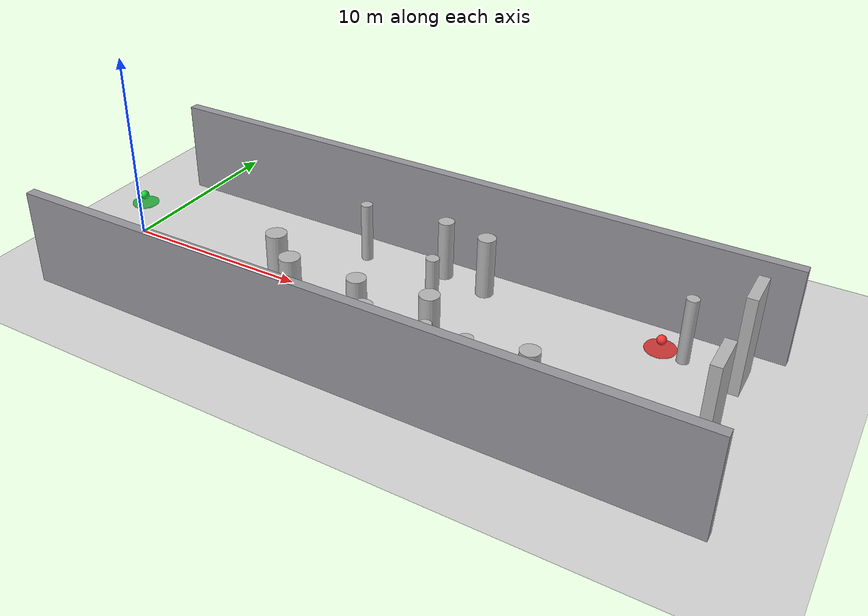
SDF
<sdf version="1.10">
 <world name="obstacle_avoidance">
  <physics type="ode">
   <max_step_size>0.0040000000000000001</max_step_size>
   <real_time_factor>1</real_time_factor>
   <real_time_update_rate>250</real_time_update_rate>
  </physics>
  <plugin name="gz::sim::systems::Physics" filename="gz-sim-physics-system"/>
  <plugin name="gz::sim::systems::UserCommands" filename="gz-sim-user-commands-system"/>
  <plugin name="gz::sim::systems::SceneBroadcaster" filename="gz-sim-scene-broadcaster-system"/>
  <plugin name="gz::sim::systems::Contact" filename="gz-sim-contact-system"/>
  <plugin name="gz::sim::systems::Imu" filename="gz-sim-imu-system"/>
  <plugin name="gz::sim::systems::AirPressure" filename="gz-sim-air-pressure-system"/>
  <plugin name="gz::sim::systems::AirSpeed" filename="gz-sim-air-speed-system"/>
  <plugin name="gz::sim::systems::ApplyLinkWrench" filename="gz-sim-apply-link-wrench-system"/>
  <plugin name="gz::sim::systems::NavSat" filename="gz-sim-navsat-system"/>
  <plugin name="gz::sim::systems::Magnetometer" filename="gz-sim-magnetometer-system"/>
  <plugin name="gz::sim::systems::Sensors" filename="gz-sim-sensors-system">
   <render_engine>ogre2</render_engine>
  </plugin>
  <plugin name="custom::OpticalFlowSystem" filename="libOpticalFlowSystem.so"/>
  <plugin name="custom::GstCameraSystem" filename="libGstCameraSystem.so"/>
  <gravity>0 0 -9.8000000000000007</gravity>
  <magnetic_field>6.0000000000000002e-06 2.3e-05 -4.1999999999999998e-05</magnetic_field>
  <atmosphere type="adiabatic"/>
  <scene>
   <grid>true</grid>
   <ambient>0.449999988 0.449999988 0.449999988 1</ambient>
   <background>0.74000001 0.769999981 0.819999993 1</background>
   <shadows>true</shadows>
  </scene>
  <spherical_coordinates>
   <surface_model>EARTH_WGS84</surface_model>
   <world_frame_orientation>ENU</world_frame_orientation>
   <latitude_deg>47.397971057728974</latitude_deg>
   <longitude_deg>8.5461637398001464</longitude_deg>
   <elevation>0</elevation>
   <heading_deg>0</heading_deg>
  </spherical_coordinates>
  <model name="ground_plane">
   <static>true</static>
   <link name="link">
    <collision name="collision">
     <geometry><plane><normal>0 0 1</normal><size>1 1</size></plane></geometry>
    </collision>
    <visual name="visual">
     <geometry><plane><normal>0 0 1</normal><size>120 120</size></plane></geometry>
     <material>
      <ambient>0.850000024 0.850000024 0.850000024 1</ambient>
      <diffuse>0.850000024 0.850000024 0.850000024 1</diffuse>
      <specular>0.400000006 0.400000006 0.400000006 1</specular>
     </material>
    </visual>
    <inertial>
     <mass>1</mass>
     <inertia><ixx>1</ixx><ixy>0</ixy><ixz>0</ixz><iyy>1</iyy><iyz>0</iyz><izz>1</izz></inertia>
    </inertial>
   </link>
  </model>
  <model name="lane_left_wall">
   <static>false</static>
   <pose>16.057222 6.058223 2.500000 0 0 0.000000</pose>
   <link name="link">
    <collision name="collision">
     <geometry><box><size>34.093088 0.500000 5.000000</size></box></geometry>
    </collision>
    <visual name="visual">
     <geometry><box><size>34.093088 0.500000 5.000000</size></box></geometry>
     <material>
      <ambient>0.5 0.5 0.519999981 1</ambient>
      <diffuse>0.600000024 0.600000024 0.620000005 1</diffuse>
     </material>
    </visual>
    <inertial>
     <mass>1</mass>
     <inertia><ixx>1</ixx><ixy>0</ixy><ixz>0</ixz><iyy>1</iyy><iyz>0</iyz><izz>1</izz></inertia>
    </inertial>
   </link>
  </model>
  <model name="lane_right_wall">
   <static>false</static>
   <pose>16.057222 -6.058223 2.500000 0 0 0.000000</pose>
   <link name="link">
    <collision name="collision">
     <geometry><box><size>34.093088 0.500000 5.000000</size></box></geometry>
    </collision>
    <visual name="visual">
     <geometry><box><size>34.093088 0.500000 5.000000</size></box></geometry>
     <material>
      <ambient>0.5 0.5 0.519999981 1</ambient>
      <diffuse>0.600000024 0.600000024 0.620000005 1</diffuse>
     </material>
    </visual>
    <inertial>
     <mass>1</mass>
     <inertia><ixx>1</ixx><ixy>0</ixy><ixz>0</ixz><iyy>1</iyy><iyz>0</iyz><izz>1</izz></inertia>
    </inertial>
   </link>
  </model>
  <model name="cyl_01">
   <static>false</static>
   <pose>12 4 1.5999992086633334 2.2687360345456637e-18 4.5657228771581074e-18 -1.896154608907737e-19</pose>
   <link name="link">
    <collision name="collision">
     <geometry>
      <cylinder><radius>0.29999999999999999</radius><length>3.2000000000000002</length></cylinder>
     </geometry>
    </collision>
    <visual name="visual">
     <geometry>
      <cylinder><radius>0.29999999999999999</radius><length>3.2000000000000002</length></cylinder>
     </geometry>
    </visual>
    <inertial>
     <mass>1</mass>
     <inertia><ixx>1</ixx><ixy>0</ixy><ixz>0</ixz><iyy>1</iyy><iyz>0</iyz><izz>1</izz></inertia>
    </inertial>
   </link>
  </model>
  <model name="cyl_02">
   <static>false</static>
   <pose>20 -4.0999999999999996 1.7999992086633334 -5.95015447457351e-18 -7.1830272029298781e-18 8.102279845254366e-20</pose>
   <link name="link">
    <collision name="collision">
     <geometry>
      <cylinder><radius>0.29999999999999999</radius><length>3.6000000000000001</length></cylinder>
     </geometry>
    </collision>
    <visual name="visual">
     <geometry>
      <cylinder><radius>0.29999999999999999</radius><length>3.6000000000000001</length></cylinder>
     </geometry>
    </visual>
    <inertial>
     <mass>1</mass>
     <inertia><ixx>1</ixx><ixy>0</ixy><ixz>0</ixz><iyy>1</iyy><iyz>0</iyz><izz>1</izz></inertia>
    </inertial>
   </link>
  </model>
  <model name="cyl_03">
   <static>false</static>
   <pose>29 3.7999999999999998 1.6999992086633333 2.9183300555717811e-18 3.6794603956307752e-18 6.9962869253696579e-20</pose>
   <link name="link">
    <collision name="collision">
     <geometry>
      <cylinder><radius>0.29999999999999999</radius><length>3.3999999999999999</length></cylinder>
     </geometry>
    </collision>
    <visual name="visual">
     <geometry>
      <cylinder><radius>0.29999999999999999</radius><length>3.3999999999999999</length></cylinder>
     </geometry>
    </visual>
    <inertial>
     <mass>1</mass>
     <inertia><ixx>1</ixx><ixy>0</ixy><ixz>0</ixz><iyy>1</iyy><iyz>0</iyz><izz>1</izz></inertia>
    </inertial>
   </link>
  </model>
  <model name="block_01">
   <static>false</static>
   <pose>9.754724 -0.718801 1.600000 0 0 0.000000</pose>
   <link name="link">
    <collision name="collision">
     <geometry><cylinder><radius>0.536429</radius><length>3.200000</length></cylinder></geometry>
    </collision>
    <visual name="visual">
     <geometry><cylinder><radius>0.536429</radius><length>3.200000</length></cylinder></geometry>
    </visual>
    <inertial>
     <mass>1</mass>
     <inertia><ixx>1</ixx><ixy>0</ixy><ixz>0</ixz><iyy>1</iyy><iyz>0</iyz><izz>1</izz></inertia>
    </inertial>
   </link>
  </model>
  <model name="block_02">
   <static>false</static>
   <pose>18.818896 -1.589290 1.600000 0 0 0.000000</pose>
   <link name="link">
    <collision name="collision">
     <geometry><cylinder><radius>0.489630</radius><length>3.200000</length></cylinder></geometry>
    </collision>
    <visual name="visual">
     <geometry><cylinder><radius>0.489630</radius><length>3.200000</length></cylinder></geometry>
    </visual>
    <inertial>
     <mass>1</mass>
     <inertia><ixx>1</ixx><ixy>0</ixy><ixz>0</ixz><iyy>1</iyy><iyz>0</iyz><izz>1</izz></inertia>
    </inertial>
   </link>
  </model>
  <model name="block_03">
   <static>false</static>
   <pose>11.608750 -2.189982 1.600000 0 0 0.000000</pose>
   <link name="link">
    <collision name="collision">
     <geometry><cylinder><radius>0.528484</radius><length>3.200000</length></cylinder></geometry>
    </collision>
    <visual name="visual">
     <geometry><cylinder><radius>0.528484</radius><length>3.200000</length></cylinder></geometry>
    </visual>
    <inertial>
     <mass>1</mass>
     <inertia><ixx>1</ixx><ixy>0</ixy><ixz>0</ixz><iyy>1</iyy><iyz>0</iyz><izz>1</izz></inertia>
    </inertial>
   </link>
  </model>
  <model name="block_04">
   <static>false</static>
   <pose>18.794506 4.135269 1.600000 0 0 0.000000</pose>
   <link name="link">
    <collision name="collision">
     <geometry><cylinder><radius>0.454639</radius><length>3.200000</length></cylinder></geometry>
    </collision>
    <visual name="visual">
     <geometry><cylinder><radius>0.454639</radius><length>3.200000</length></cylinder></geometry>
    </visual>
    <inertial>
     <mass>1</mass>
     <inertia><ixx>1</ixx><ixy>0</ixy><ixz>0</ixz><iyy>1</iyy><iyz>0</iyz><izz>1</izz></inertia>
    </inertial>
   </link>
  </model>
  <model name="block_05">
   <static>false</static>
   <pose>15.289310 -2.109607 1.600000 0 0 0.000000</pose>
   <link name="link">
    <collision name="collision">
     <geometry><cylinder><radius>0.476729</radius><length>3.200000</length></cylinder></geometry>
    </collision>
    <visual name="visual">
     <geometry><cylinder><radius>0.476729</radius><length>3.200000</length></cylinder></geometry>
    </visual>
    <inertial>
     <mass>1</mass>
     <inertia><ixx>1</ixx><ixy>0</ixy><ixz>0</ixz><iyy>1</iyy><iyz>0</iyz><izz>1</izz></inertia>
    </inertial>
   </link>
  </model>
  <model name="block_06">
   <static>false</static>
   <pose>16.688040 -3.830106 1.600000 0 0 0.000000</pose>
   <link name="link">
    <collision name="collision">
     <geometry><cylinder><radius>0.518591</radius><length>3.200000</length></cylinder></geometry>
    </collision>
    <visual name="visual">
     <geometry><cylinder><radius>0.518591</radius><length>3.200000</length></cylinder></geometry>
    </visual>
    <inertial>
     <mass>1</mass>
     <inertia><ixx>1</ixx><ixy>0</ixy><ixz>0</ixz><iyy>1</iyy><iyz>0</iyz><izz>1</izz></inertia>
    </inertial>
   </link>
  </model>
  <model name="block_07">
   <static>false</static>
   <pose>17.442931 1.155374 1.600000 0 0 0.000000</pose>
   <link name="link">
    <collision name="collision">
     <geometry><cylinder><radius>0.321786</radius><length>3.200000</length></cylinder></geometry>
    </collision>
    <visual name="visual">
     <geometry><cylinder><radius>0.321786</radius><length>3.200000</length></cylinder></geometry>
    </visual>
    <inertial>
     <mass>1</mass>
     <inertia><ixx>1</ixx><ixy>0</ixy><ixz>0</ixz><iyy>1</iyy><iyz>0</iyz><izz>1</izz></inertia>
    </inertial>
   </link>
  </model>
  <model name="block_08">
   <static>false</static>
   <pose>21.690597 -3.645275 1.600000 0 0 0.000000</pose>
   <link name="link">
    <collision name="collision">
     <geometry><cylinder><radius>0.350084</radius><length>3.200000</length></cylinder></geometry>
    </collision>
    <visual name="visual">
     <geometry><cylinder><radius>0.350084</radius><length>3.200000</length></cylinder></geometry>
    </visual>
    <inertial>
     <mass>1</mass>
     <inertia><ixx>1</ixx><ixy>0</ixy><ixz>0</ixz><iyy>1</iyy><iyz>0</iyz><izz>1</izz></inertia>
    </inertial>
   </link>
  </model>
  <model name="block_09">
   <static>false</static>
   <pose>24.353561 -3.043093 1.600000 0 0 0.000000</pose>
   <link name="link">
    <collision name="collision">
     <geometry><cylinder><radius>0.466952</radius><length>3.200000</length></cylinder></geometry>
    </collision>
    <visual name="visual">
     <geometry><cylinder><radius>0.466952</radius><length>3.200000</length></cylinder></geometry>
    </visual>
    <inertial>
     <mass>1</mass>
     <inertia><ixx>1</ixx><ixy>0</ixy><ixz>0</ixz><iyy>1</iyy><iyz>0</iyz><izz>1</izz></inertia>
    </inertial>
   </link>
  </model>
  <model name="block_10">
   <static>false</static>
   <pose>16.344099 4.552716 1.600000 0 0 0.000000</pose>
   <link name="link">
    <collision name="collision">
     <geometry><cylinder><radius>0.402173</radius><length>3.200000</length></cylinder></geometry>
    </collision>
    <visual name="visual">
     <geometry><cylinder><radius>0.402173</radius><length>3.200000</length></cylinder></geometry>
    </visual>
    <inertial>
     <mass>1</mass>
     <inertia><ixx>1</ixx><ixy>0</ixy><ixz>0</ixz><iyy>1</iyy><iyz>0</iyz><izz>1</izz></inertia>
    </inertial>
   </link>
  </model>
  <model name="start_marker">
   <static>true</static>
   <pose>0.510678 -0.062048 2.000000 0 0 0.000000</pose>
   <link name="link">
    <gravity>false</gravity>
    <kinematic>true</kinematic>
    <visual name="base_ring">
     <geometry>
      <cylinder><radius>0.69999999999999996</radius><length>0.040000000000000001</length></cylinder>
     </geometry>
     <material>
      <ambient>0.100000001 0.699999988 0.200000003 0.850000024</ambient>
      <diffuse>0.100000001 0.699999988 0.200000003 0.850000024</diffuse>
      <specular>0.200000003 0.200000003 0.200000003 1</specular>
     </material>
    </visual>
    <visual name="center_sphere">
     <pose>0 0 0.45000000000000001 0 0 0</pose>
     <geometry><sphere><radius>0.22</radius></sphere></geometry>
     <material>
      <ambient>0.100000001 0.850000024 0.25 1</ambient>
      <diffuse>0.100000001 0.850000024 0.25 1</diffuse>
      <specular>0.300000012 0.300000012 0.300000012 1</specular>
     </material>
    </visual>
    <inertial>
     <mass>1</mass>
     <inertia><ixx>1</ixx><ixy>0</ixy><ixz>0</ixz><iyy>1</iyy><iyz>0</iyz><izz>1</izz></inertia>
    </inertial>
   </link>
  </model>
  <model name="goal_marker">
   <static>true</static>
   <pose>28.603766 0.936327 2.380000 0 0 0.000000</pose>
   <link name="link">
    <gravity>false</gravity>
    <kinematic>true</kinematic>
    <visual name="base_ring">
     <geometry>
      <cylinder><radius>0.69999999999999996</radius><length>0.040000000000000001</length></cylinder>
     </geometry>
     <material>
      <ambient>0.850000024 0.150000006 0.150000006 0.850000024</ambient>
      <diffuse>0.850000024 0.150000006 0.150000006 0.850000024</diffuse>
      <specular>0.200000003 0.200000003 0.200000003 1</specular>
     </material>
    </visual>
    <visual name="center_sphere">
     <pose>0 0 0.45000000000000001 0 0 0</pose>
     <geometry><sphere><radius>0.22</radius></sphere></geometry>
     <material>
      <ambient>0.949999988 0.200000003 0.200000003 1</ambient>
      <diffuse>0.949999988 0.200000003 0.200000003 1</diffuse>
      <specular>0.300000012 0.300000012 0.300000012 1</specular>
     </material>
    </visual>
    <inertial>
     <mass>1</mass>
     <inertia><ixx>1</ixx><ixy>0</ixy><ixz>0</ixz><iyy>1</iyy><iyz>0</iyz><izz>1</izz></inertia>
    </inertial>
   </link>
  </model>
  <model name="goal_gate_left">
   <static>false</static>
   <pose>31.603766 3.536327 2.500000 0 0 0.000000</pose>
   <link name="link">
    <collision name="collision">
     <geometry><box><size>0.500000 2.000000 5.000000</size></box></geometry>
    </collision>
    <visual name="visual"><geometry><box><size>0.500000 2.000000 5.000000</size></box></geometry></visual>
    <inertial>
     <mass>1</mass>
     <inertia><ixx>1</ixx><ixy>0</ixy><ixz>0</ixz><iyy>1</iyy><iyz>0</iyz><izz>1</izz></inertia>
    </inertial>
   </link>
  </model>
  <model name="goal_gate_right">
   <static>false</static>
   <pose>31.603766 -1.663673 2.500000 0 0 0.000000</pose>
   <link name="link">
    <collision name="collision">
     <geometry><box><size>0.500000 2.000000 5.000000</size></box></geometry>
    </collision>
    <visual name="visual"><geometry><box><size>0.500000 2.000000 5.000000</size></box></geometry></visual>
    <inertial>
     <mass>1</mass>
     <inertia><ixx>1</ixx><ixy>0</ixy><ixz>0</ixz><iyy>1</iyy><iyz>0</iyz><izz>1</izz></inertia>
    </inertial>
   </link>
  </model>
  <light name="sunUTC" type="directional">
   <pose>0 0 500 0 0 0</pose>
   <intensity>1</intensity>
   <direction>0.001 0.625 -0.78000000000000003</direction>
   <diffuse>0.899999976 0.899999976 0.899999976 1</diffuse>
   <specular>0.25 0.25 0.25 1</specular>
   <attenuation><range>2000</range><linear>0</linear><constant>1</constant><quadratic>0</quadratic></attenuation>
   <spot><inner_angle>0</inner_angle><outer_angle>0</outer_angle><falloff>0</falloff></spot>
  </light>
 </world>
</sdf>
